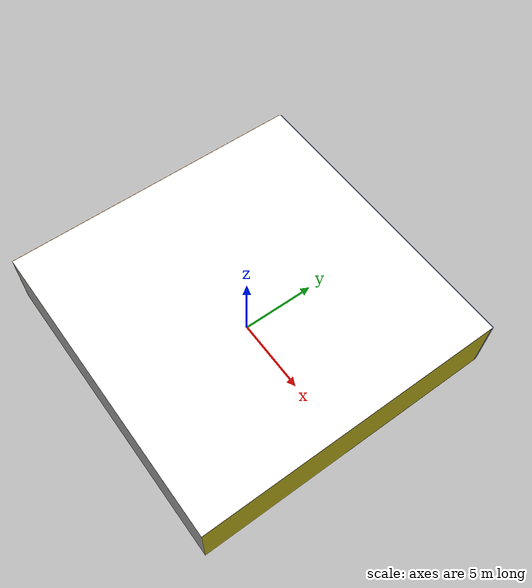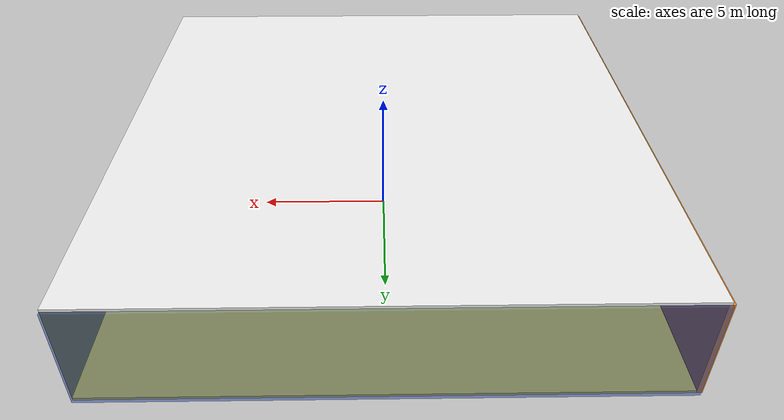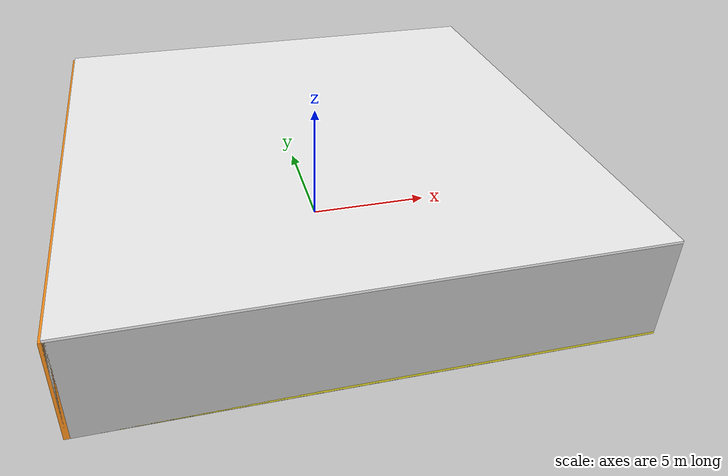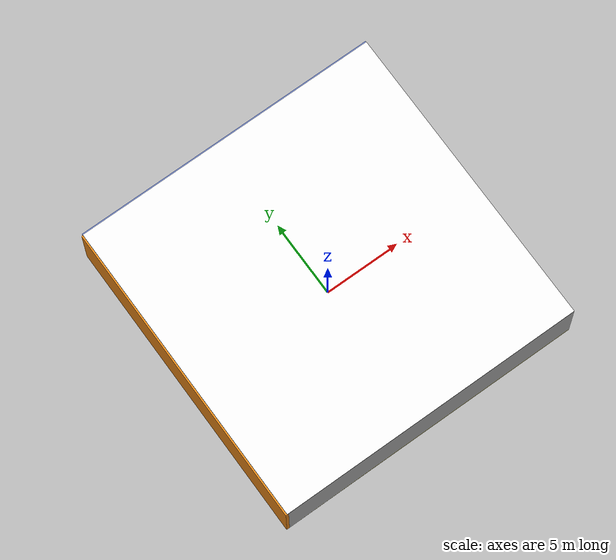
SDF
<sdf version="1.4">
 <world name="default">
  <physics type="ode">
   <max_step_size>0.001</max_step_size>
   <real_time_factor>1</real_time_factor>
   <real_time_update_rate>1000</real_time_update_rate>
   <gravity>0 0 -9.8</gravity>
  </physics>
  <scene><ambient>0.4 0.4 0.4 1</ambient><background>0.7 0.7 0.7 1</background><shadows>1</shadows></scene>
  <model name="Surrounding">
   <static>1</static>
   <link name="Ceiling">
    <collision name="Ceiling_Collision"><geometry><box><size>20 20 0.1</size></box></geometry></collision>
    <visual name="Ceiling_Visual">
     <geometry><box><size>20 20 0.1</size></box></geometry>
     <material>
      <script><uri>file://media/materials/scripts/gazebo.material</uri><name>Gazebo/White</name></script>
     </material>
    </visual>
    <pose>0 0 4.05 0 0 0</pose>
   </link>
   <link name="Wall_South">
    <collision name="Wall_South_Collision">
     <geometry><box><size>20 0 4</size></box></geometry>
     <pose>0 0 2 0 -0 0</pose>
    </collision>
    <visual name="Wall_South_Visual">
     <pose>0 0 2 0 -0 0</pose>
     <geometry><box><size>20 0 4</size></box></geometry>
     <material>
      <script><uri>file://media/materials/scripts/gazebo.material</uri><name>Gazebo/Pioneer2Body</name></script>
     </material>
    </visual>
    <velocity_decay><linear>0</linear><angular>0</angular></velocity_decay>
    <pose>0 -10 0 0 -0 0</pose>
   </link>
   <link name="Wall_East">
    <collision name="Wall_21_Collision">
     <geometry><box><size>20 0 4</size></box></geometry>
     <pose>0 0 2 0 -0 0</pose>
    </collision>
    <visual name="Wall_21_Visual">
     <pose>0 0 2 0 -0 0</pose>
     <geometry><box><size>20 0 4</size></box></geometry>
     <material>
      <script><uri>file://media/materials/scripts/gazebo.material</uri><name>Gazebo/Yellow</name></script>
     </material>
    </visual>
    <velocity_decay><linear>0</linear><angular>0</angular></velocity_decay>
    <pose>10 0 0 0 -0 1.5708</pose>
   </link>
   <link name="Wall_North">
    <collision name="Wall_22_Collision">
     <geometry><box><size>20 0.2 4</size></box></geometry>
     <pose>0 0 2 0 -0 0</pose>
    </collision>
    <visual name="Wall_22_Visual">
     <pose>0 0 2 0 -0 0</pose>
     <geometry><box><size>20 0.2 4</size></box></geometry>
     <material>
      <script><uri>file://media/materials/scripts/gazebo.material</uri><name>Gazebo/BlueTransparent</name></script>
     </material>
    </visual>
    <velocity_decay><linear>0</linear><angular>0</angular></velocity_decay>
    <pose>0 10 0 0 -0 0</pose>
   </link>
   <link name="Wall_West">
    <collision name="Wall_23_Collision">
     <geometry><box><size>20 0.2 4</size></box></geometry>
     <pose>0 0 2 0 -0 0</pose>
    </collision>
    <visual name="Wall_23_Visual">
     <pose>0 0 2 0 -0 0</pose>
     <geometry><box><size>20 0.2 4</size></box></geometry>
     <material>
      <script><uri>file://media/materials/scripts/gazebo.material</uri><name>Gazebo/Orange</name></script>
     </material>
    </visual>
    <velocity_decay><linear>0</linear><angular>0</angular></velocity_decay>
    <pose>-10 0 0 0 0 -1.5708</pose>
   </link>
   <link name="Ground_link">
    <collision name="collision">
     <pose>0 0 .05 0 -0 0</pose>
     <geometry><box><size>20 20 0.1</size></box></geometry>
    </collision>
    <visual name="visual">
     <pose>0 0 .05 0 -0 0</pose>
     <geometry><box><size>20 20 0.1</size></box></geometry>
     <material>
      <script><uri>file://media/materials/scripts/gazebo.material</uri><name>Gazebo/Yellow</name></script>
     </material>
    </visual>
   </link>
   <static>1</static>
  </model>
  <spherical_coordinates>
   <surface_model>EARTH_WGS84</surface_model>
   <latitude_deg>0</latitude_deg>
   <longitude_deg>0</longitude_deg>
   <elevation>0</elevation>
   <heading_deg>0</heading_deg>
  </spherical_coordinates>
  <light name="lightball_0" type="diffuse">
   <diffuse>0.8 0.8 0.8 1</diffuse>
   <specular>0.2 0.2 0.2 1</specular>
   <attenuation>
    <range>100</range>
    <constant>0.7</constant>
    <linear>0.01</linear>
    <quadratic>0.001</quadratic>
   </attenuation>
   <direction>-0.5 0.1 -0.9</direction>
   <pose>3.0781221183 8.58350695778 3.64696808039 0 0 0</pose>
  </light>
  <light name="lightball_1" type="diffuse">
   <diffuse>0.8 0.8 0.8 1</diffuse>
   <specular>0.2 0.2 0.2 1</specular>
   <attenuation>
    <range>100</range>
    <constant>0.7</constant>
    <linear>0.01</linear>
    <quadratic>0.001</quadratic>
   </attenuation>
   <direction>-0.5 0.1 -0.9</direction>
   <pose>0.909895553636 -8.79421060982 3.62412436754 0 0 0</pose>
  </light>
  <light name="lightball_2" type="diffuse">
   <diffuse>0.8 0.8 0.8 1</diffuse>
   <specular>0.2 0.2 0.2 1</specular>
   <attenuation>
    <range>100</range>
    <constant>0.7</constant>
    <linear>0.01</linear>
    <quadratic>0.001</quadratic>
   </attenuation>
   <direction>-0.5 0.1 -0.9</direction>
   <pose>5.80588158505 9.0217442145 1.14566985365 0 0 0</pose>
  </light>
  <include><uri>model://table</uri><pose>-6.75521861362 -1.63843666681 0 0 0 0.752051777912</pose></include>
  <include><uri>model://cabinet</uri><pose>-3.85608799687 -1.95819659093 0 0 0 0.61644935602</pose></include>
  <include>
   <uri>model://robocup_3Dsim_goal</uri>
   <pose>-4.08664200407 2.22781542756 0 0 0 2.20110656698</pose>
  </include>
  <include>
   <uri>model://textured_shapes</uri>
   <pose>-1.62342101063 -5.01322637456 0 0 0 2.48084919419</pose>
  </include>
  <include><uri>model://cabinet</uri><pose>1.50250754677 -3.99643758793 0 0 0 1.03667005317</pose></include>
  <include><uri>model://table</uri><pose>1.47657427403 4.11584859882 0 0 0 2.28681702238</pose></include>
  <include><uri>model://cabinet</uri><pose>4.97179687108 4.77732100023 0 0 0 2.62175952411</pose></include>
  <include><uri>model://cabinet</uri><pose>6.80665328501 -5.22979361465 0 0 0 0.538151518393</pose></include>
  <include>
   <uri>model://construction_cone</uri>
   <pose>7.71159175124 2.22144372376 0 0 0 0.879235215473</pose>
  </include>
 </world>
</sdf>

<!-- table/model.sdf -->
<sdf version="1.5">
  <model name="table">
    <static>true</static>
    <link name="link">
      <collision name="surface">
        <pose>0 0 1.0 0 0 0</pose>
        <geometry>
          <box>
            <size>1.5 0.8 0.03</size>
          </box>
        </geometry>
        <surface>
          <friction>
            <ode>
              <mu>0.6</mu>
              <mu2>0.6</mu2>
            </ode>
          </friction>
        </surface>
      </collision>
      <visual name="visual1">
        <pose>0 0 1.0 0 0 0</pose>
        <geometry>
          <box>
            <size>1.5 0.8 0.03</size>
          </box>
        </geometry>
        <material>
          <script>
            <uri>model://media/materials/scripts/gazebo.material</uri>
            <name>Gazebo/Wood</name>
          </script>
        </material>
      </visual>
      <collision name="front_left_leg">
        <pose>0.68 0.38 0.5 0 0 0</pose>
        <geometry>
          <cylinder>
            <radius>0.02</radius>
            <length>1.0</length>
          </cylinder>
        </geometry>
      </collision>
      <visual name="front_left_leg">
        <pose>0.68 0.38 0.5 0 0 0</pose>
        <geometry>
          <cylinder>
            <radius>0.02</radius>
            <length>1.0</length>
          </cylinder>
        </geometry>
        <material>
          <script>
            <uri>model://media/materials/scripts/gazebo.material</uri>
            <name>Gazebo/Grey</name>
          </script>
        </material>
      </visual>
      <collision name="front_right_leg">
        <pose>0.68 -0.38 0.5 0 0 0</pose>
        <geometry>
          <cylinder>
            <radius>0.02</radius>
            <length>1.0</length>
          </cylinder>
        </geometry>
      </collision>
      <visual name="front_right_leg">
        <pose>0.68 -0.38 0.5 0 0 0</pose>
        <geometry>
          <cylinder>
            <radius>0.02</radius>
            <length>1.0</length>
          </cylinder>
        </geometry>
        <material>
          <script>
            <uri>model://media/materials/scripts/gazebo.material</uri>
            <name>Gazebo/Grey</name>
          </script>
        </material>
      </visual>
      <collision name="back_right_leg">
        <pose>-0.68 -0.38 0.5 0 0 0</pose>
        <geometry>
          <cylinder>
            <radius>0.02</radius>
            <length>1.0</length>
          </cylinder>
        </geometry>
      </collision>
      <visual name="back_right_leg">
        <pose>-0.68 -0.38 0.5 0 0 0</pose>
        <geometry>
          <cylinder>
            <radius>0.02</radius>
            <length>1.0</length>
          </cylinder>
        </geometry>
        <material>
          <script>
            <uri>model://media/materials/scripts/gazebo.material</uri>
            <name>Gazebo/Grey</name>
          </script>
        </material>
      </visual>
      <collision name="back_left_leg">
        <pose>-0.68 0.38 0.5 0 0 0</pose>
        <geometry>
          <cylinder>
            <radius>0.02</radius>
            <length>1.0</length>
          </cylinder>
        </geometry>
      </collision>
      <visual name="back_left_leg">
        <pose>-0.68 0.38 0.5 0 0 0</pose>
        <geometry>
          <cylinder>
            <radius>0.02</radius>
            <length>1.0</length>
          </cylinder>
        </geometry>
        <material>
          <script>
            <uri>model://media/materials/scripts/gazebo.material</uri>
            <name>Gazebo/Grey</name>
          </script>
        </material>
      </visual>
    </link>
  </model>
</sdf>

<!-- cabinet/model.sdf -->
<sdf version="1.5">
  <model name="cabinet">
    <static>true</static>
    <link name="cabinet_bottom_plate">
      <inertial>
        <pose>0 0 -1 0 0 0</pose>
        <inertia>
          <ixx>2.050000</ixx>
          <ixy>0</ixy>
          <ixz>0</ixz>
          <iyy>2.050000</iyy>
          <iyz>0</iyz>
          <izz>2.050000</izz>
        </inertia>
        <mass>25.000000</mass>
      </inertial>
      <collision name="cabinet_bottom_plate_geom">
        <pose>0 0 0.010000 0 0 0</pose>
        <geometry>
          <box>
            <size>0.450000 0.450000 0.020000</size>
          </box>
        </geometry>
      </collision>
      <visual name="cabinet_bottom_plate_geom_visual">
        <pose>0 0 0.010000 0 0 0</pose>
        <geometry>
          <box>
            <size>0.450000 0.450000 0.020000</size>
          </box>
        </geometry>
        <material>
          <script>
            <uri>model://media/materials/scripts/gazebo.material</uri>
            <name>Gazebo/Wood</name>
          </script>
        </material>
      </visual>
      <collision name="cabinet_bottom_plate_geom_cabinet_back_plate">
        <pose>0.235000 0 0.510000 0 0 0</pose>
        <geometry>
          <box>
            <size>0.020000 0.450000 1.020000</size>
          </box>
        </geometry>
      </collision>
      <visual name="cabinet_bottom_plate_geom_cabinet_back_plate_visual">
        <pose>0.235000 0 0.510000 0 0 0</pose>
        <geometry>
          <box>
            <size>0.020000 0.450000 1.020000</size>
          </box>
        </geometry>
        <material>
          <script>
            <uri>model://media/materials/scripts/gazebo.material</uri>
            <name>Gazebo/Wood</name>
          </script>
        </material>
      </visual>
      <collision name="cabinet_bottom_plate_geom_cabinet_left_plate">
        <pose>0 0.235000 0.510000 0 0 0</pose>
        <geometry>
          <box>
            <size>0.450000 0.020000 1.020000</size>
          </box>
        </geometry>
      </collision>
      <visual name="cabinet_bottom_plate_geom_cabinet_left_plate_visual">
        <pose>0 0.235000 0.510000 0 0 0</pose>
        <geometry>
          <box>
            <size>0.450000 0.020000 1.020000</size>
          </box>
        </geometry>
        <material>
          <script>
            <uri>model://media/materials/scripts/gazebo.material</uri>
            <name>Gazebo/Wood</name>
          </script>
        </material>
      </visual>
      <collision name="cabinet_bottom_plate_geom_cabinet_middle_plate">
        <pose>0 0 0.510000 0 0 0</pose>
        <geometry>
          <box>
            <size>0.450000 0.450000 0.020000</size>
          </box>
        </geometry>
      </collision>
      <visual name="cabinet_bottom_plate_geom_cabinet_middle_plate_visual">
        <pose>0 0 0.510000 0 0 0</pose>
        <geometry>
          <box>
            <size>0.450000 0.450000 0.020000</size>
          </box>
        </geometry>
        <material>
          <script>
            <uri>model://media/materials/scripts/gazebo.material</uri>
            <name>Gazebo/Wood</name>
          </script>
        </material>
      </visual>
      <collision name="cabinet_bottom_plate_geom_cabinet_right_plate">
        <pose>0 -0.235000 0.510000 0 0 0</pose>
        <geometry>
          <box>
            <size>0.450000 0.020000 1.020000</size>
          </box>
        </geometry>
      </collision>
      <visual name="cabinet_bottom_plate_geom_cabinet_right_plate_visual">
        <pose>0 -0.235000 0.510000 0 0 0</pose>
        <geometry>
          <box>
            <size>0.450000 0.020000 1.020000</size>
          </box>
        </geometry>
        <material>
          <script>
            <uri>model://media/materials/scripts/gazebo.material</uri>
            <name>Gazebo/Wood</name>
          </script>
        </material>
      </visual>
      <collision name="cabinet_bottom_plate_geom_cabinet_top_plate">
        <pose>0 0 1.010000 0 0 0</pose>
        <geometry>
          <box>
            <size>0.450000 0.450000 0.020000</size>
          </box>
        </geometry>
      </collision>
      <visual name="cabinet_bottom_plate_geom_cabinet_top_plate_visual">
        <pose>0 0 1.010000 0 0 0</pose>
        <geometry>
          <box>
            <size>0.450000 0.450000 0.020000</size>
          </box>
        </geometry>
        <material>
          <script>
            <uri>model://media/materials/scripts/gazebo.material</uri>
            <name>Gazebo/Wood</name>
          </script>
        </material>
      </visual>
    </link>
  </model>
</sdf>

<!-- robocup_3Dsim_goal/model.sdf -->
<sdf version="1.5">
  <model name="robocup_3d_goal">
    <static>true</static>
    <link name="left_post">
      <pose>0 1.05 0.45 0 0 0</pose>
      <collision name="collision">
        <geometry>
          <cylinder>
            <radius>0.05</radius>
            <length>0.9</length>
          </cylinder>
        </geometry>
      </collision>
      <visual name="visual">
        <geometry>
          <cylinder>
            <radius>0.05</radius>
            <length>0.9</length>
          </cylinder>
        </geometry>
        <material>
          <script>
            <uri>file://media/materials/scripts/gazebo.material</uri>
            <name>Gazebo/ZincYellow</name>
          </script>
        </material>
      </visual>
    </link>
    <link name="left_support_horiz_lower">
      <pose>0.30 1.05 0.01 0 0 0</pose>
      <collision name="collision">
        <geometry>
          <box>
            <size>0.50 0.02 0.02</size>
          </box>
        </geometry>
      </collision>
      <visual name="visual">
        <geometry>
          <box>
            <size>0.50 0.02 0.02</size>
          </box>
        </geometry>
        <material>
          <script>
            <uri>file://media/materials/scripts/gazebo.material</uri>
            <name>Gazebo/White</name>
          </script>
        </material>
      </visual>
    </link>
    <link name="left_support_horiz_upper">
      <pose>0.30 1.05 0.79 0 0 0</pose>
      <collision name="collision">
        <geometry>
          <box>
            <size>0.50 0.02 0.02</size>
          </box>
        </geometry>
      </collision>
      <visual name="visual">
        <geometry>
          <box>
            <size>0.50 0.02 0.02</size>
          </box>
        </geometry>
        <material>
          <script>
            <uri>file://media/materials/scripts/gazebo.material</uri>
            <name>Gazebo/White</name>
          </script>
        </material>
      </visual>
    </link>
    <link name="left_support_vertical">
      <pose>0.56 1.05 0.4 0 1.5708 0</pose>
      <collision name="collision">
        <geometry>
          <box>
            <size>0.80 0.02 0.02</size>
          </box>
        </geometry>
      </collision>
      <visual name="visual">
        <geometry>
          <box>
            <size>0.80 0.02 0.02</size>
          </box>
        </geometry>
        <material>
          <script>
            <uri>file://media/materials/scripts/gazebo.material</uri>
            <name>Gazebo/White</name>
          </script>
        </material>
      </visual>
    </link>
    <link name="right_support_horiz_lower">
      <pose>0.30 -1.05 0.01 0 0 0</pose>
      <collision name="collision">
        <geometry>
          <box>
            <size>0.50 0.02 0.02</size>
          </box>
        </geometry>
      </collision>
      <visual name="visual">
        <geometry>
          <box>
            <size>0.50 0.02 0.02</size>
          </box>
        </geometry>
        <material>
          <script>
            <uri>file://media/materials/scripts/gazebo.material</uri>
            <name>Gazebo/White</name>
          </script>
        </material>
      </visual>
    </link>
    <link name="right_support_horiz_upper">
      <pose>0.30 -1.05 0.79 0 0 0</pose>
      <collision name="collision">
        <geometry>
          <box>
            <size>0.50 0.02 0.02</size>
          </box>
        </geometry>
      </collision>
      <visual name="visual">
        <geometry>
          <box>
            <size>0.50 0.02 0.02</size>
          </box>
        </geometry>
        <material>
          <script>
            <uri>file://media/materials/scripts/gazebo.material</uri>
            <name>Gazebo/White</name>
          </script>
        </material>
      </visual>
    </link>
    <link name="right_support_vertical">
      <pose>0.56 -1.05 0.4 0 1.5708 0</pose>
      <collision name="collision">
        <geometry>
          <box>
            <size>0.80 0.02 0.02</size>
          </box>
        </geometry>
      </collision>
      <visual name="visual">
        <geometry>
          <box>
            <size>0.80 0.02 0.02</size>
          </box>
        </geometry>
        <material>
          <script>
            <uri>file://media/materials/scripts/gazebo.material</uri>
            <name>Gazebo/White</name>
          </script>
        </material>
      </visual>
    </link>
    <link name="center_support_horiz_lower">
      <pose>0.56 0 0.01 0 1.5708 0</pose>
      <collision name="collision">
        <geometry>
          <box>
            <size>0.02 2.08 0.02</size>
          </box>
        </geometry>
      </collision>
      <visual name="visual">
        <geometry>
          <box>
            <size>0.02 2.08 0.02</size>
          </box>
        </geometry>
        <material>
          <script>
            <uri>file://media/materials/scripts/gazebo.material</uri>
            <name>Gazebo/White</name>
          </script>
        </material>
      </visual>
    </link>
    <link name="center_support_horiz_upper">
      <pose>0.56 0 0.79 0 1.5708 0</pose>
      <collision name="collision">
        <geometry>
          <box>
            <size>0.02 2.08 0.02</size>
          </box>
        </geometry>
      </collision>
      <visual name="visual">
        <geometry>
          <box>
            <size>0.02 2.08 0.02</size>
          </box>
        </geometry>
        <material>
          <script>
            <uri>file://media/materials/scripts/gazebo.material</uri>
            <name>Gazebo/White</name>
          </script>
        </material>
      </visual>
    </link>
    <link name="right_post">
      <pose>0 -1.05 0.45 0 0 0</pose>
      <collision name="collision">
        <geometry>
          <cylinder>
            <radius>0.05</radius>
            <length>0.9</length>
          </cylinder>
        </geometry>
      </collision>
      <visual name="visual">
        <geometry>
          <cylinder>
            <radius>0.05</radius>
            <length>0.9</length>
          </cylinder>
        </geometry>
        <material>
          <script>
            <uri>file://media/materials/scripts/gazebo.material</uri>
            <name>Gazebo/ZincYellow</name>
          </script>
        </material>
      </visual>
    </link>
    <link name="crossbar">
      <pose>0 0 0.85 1.57 1.57 0</pose>
      <collision name="collision">
        <geometry>
          <cylinder>
            <radius>0.05</radius>
            <length>2.0</length>
          </cylinder>
        </geometry>
      </collision>
      <visual name="visual">
        <geometry>
          <cylinder>
            <radius>0.05</radius>
            <length>2.0</length>
          </cylinder>
        </geometry>
        <material>
          <script>
            <uri>file://media/materials/scripts/gazebo.material</uri>
            <name>Gazebo/ZincYellow</name>
          </script>
        </material>
      </visual>
    </link>
    <link name="center_net">
      <pose>0.56 0 0.40 0 0 0</pose>
      <collision name="collision">
        <geometry>
          <box>
            <size>0.01 2.1 0.80</size>
          </box>
        </geometry>
      </collision>
      <visual name="visual">
        <geometry>
          <box>
            <size>0.01 2.1 0.80</size>
          </box>
        </geometry>
        <material>
          <script>
            <uri>model://../model_source/models/robocup09_spl_field/materials/scripts/</uri>
            <uri>model://../model_source/models/robocup09_spl_field/materials/textures/</uri>
            <name>RoboCup/Net</name>
          </script>
        </material>
      </visual>
    </link>
    <link name="left_net">
      <pose>0.30 1.05 0.40 0 0 0</pose>
      <collision name="collision">
        <geometry>
          <box>
            <size>0.50 0.01 0.76</size>
          </box>
        </geometry>
      </collision>
      <visual name="visual">
        <geometry>
          <box>
            <size>0.50 0.01 0.76</size>
          </box>
        </geometry>
        <material>
          <script>
            <uri>model://../model_source/models/robocup09_spl_field/materials/scripts/</uri>
            <uri>model://../model_source/models/robocup09_spl_field/materials/textures/</uri>
            <name>RoboCup/Net</name>
          </script>
        </material>
      </visual>
    </link>
    <link name="right_net">
      <pose>0.30 -1.05 0.40 0 0 0</pose>
      <collision name="collision">
        <geometry>
          <box>
            <size>0.50 0.01 0.76</size>
          </box>
        </geometry>
      </collision>
      <visual name="visual">
        <geometry>
          <box>
            <size>0.50 0.01 0.76</size>
          </box>
        </geometry>
        <material>
          <script>
            <uri>model://../model_source/models/robocup09_spl_field/materials/scripts/</uri>
            <uri>model://../model_source/models/robocup09_spl_field/materials/textures/</uri>
            <name>RoboCup/Net</name>
          </script>
        </material>
      </visual>
    </link>
  </model>
</sdf>

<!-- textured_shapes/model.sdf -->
<sdf version="1.6">
  <model name="textured_shapes">
    <pose>0 0 0.5 0 0 0</pose>
    <link name="box">
      <pose>0 -1.5 0 0 0 0</pose>
      <collision name="collision">
        <geometry>
          <box>
            <size>1 1 1</size>
          </box>
        </geometry>
      </collision>
      <visual name="visual">
        <geometry>
          <box>
            <size>1 1 1</size>
          </box>
        </geometry>
        <material>
          <script>
            <uri>model://../model_source/models/textured_shapes/materials/scripts</uri>
            <uri>model://../model_source/models/textured_shapes/materials/textures</uri>
            <name>TexturedShape/Squares</name>
          </script>
        </material>
      </visual>
    </link>
    <link name="sphere">
      <collision name="collision">
        <geometry>
          <sphere>
            <radius>0.5</radius>
          </sphere>
        </geometry>
      </collision>
      <visual name="visual">
        <geometry>
          <sphere>
            <radius>0.5</radius>
          </sphere>
        </geometry>
        <material>
          <script>
            <uri>model://../model_source/models/textured_shapes/materials/scripts</uri>
            <uri>model://../model_source/models/textured_shapes/materials/textures</uri>
            <name>TexturedShape/Squares</name>
          </script>
        </material>
      </visual>
    </link>
    <link name="cylinder">
      <pose>0 1.5 0 0 0 0</pose>
      <collision name="collision">
        <geometry>
          <cylinder>
            <radius>0.5</radius>
            <length>1</length>
          </cylinder>
        </geometry>
      </collision>
      <visual name="visual">
        <geometry>
          <cylinder>
            <radius>0.5</radius>
            <length>1</length>
          </cylinder>
        </geometry>
        <material>
          <script>
            <uri>model://../model_source/models/textured_shapes/materials/scripts</uri>
            <uri>model://../model_source/models/textured_shapes/materials/textures</uri>
            <name>TexturedShape/Squares</name>
          </script>
        </material>
      </visual>
    </link>
  </model>
</sdf>

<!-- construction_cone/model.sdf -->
<sdf version="1.5">
  <model name="Construction Cone">
    <link name="link">
      <collision name="collision">
        <geometry>
          <mesh>
            <scale>10 10 10</scale>
            <uri>file://isr-testbed/construction_cone/meshes/construction_cone.dae</uri>
          </mesh>
        </geometry>
      </collision>
      <visual name="visual">
        <geometry>
          <mesh>
            <scale>10 10 10</scale>
            <uri>file://isr-testbed/construction_cone/meshes/construction_cone.dae</uri>
          </mesh>
        </geometry>
      </visual>
    </link>
  </model>
</sdf>
